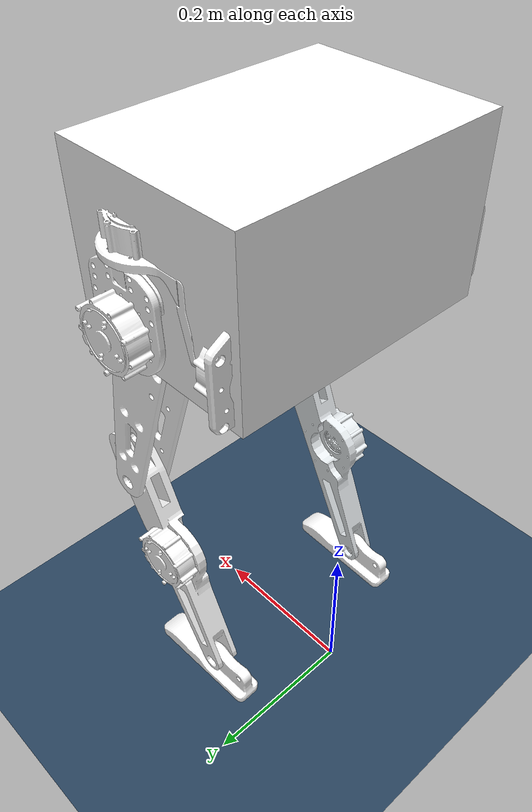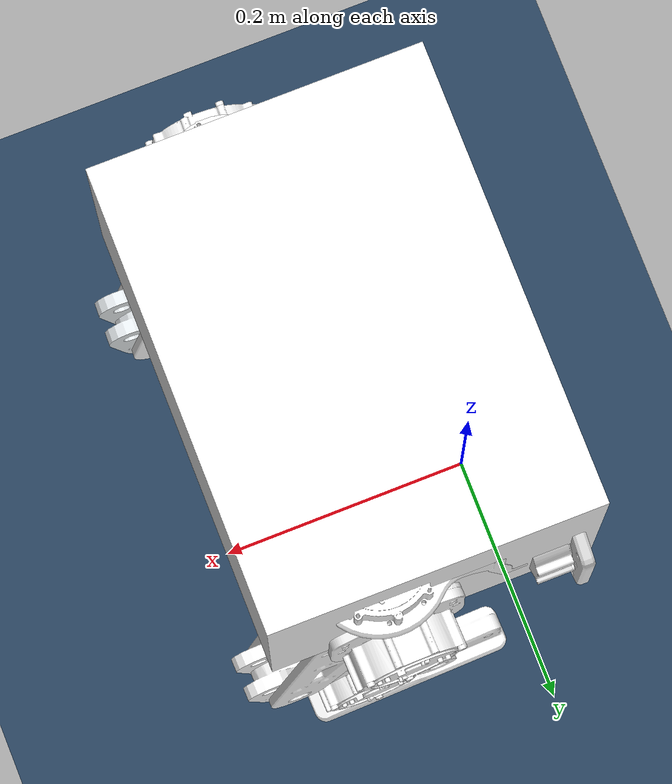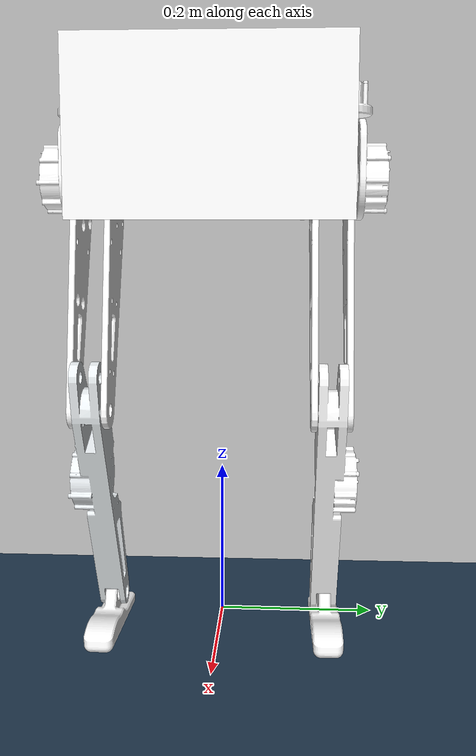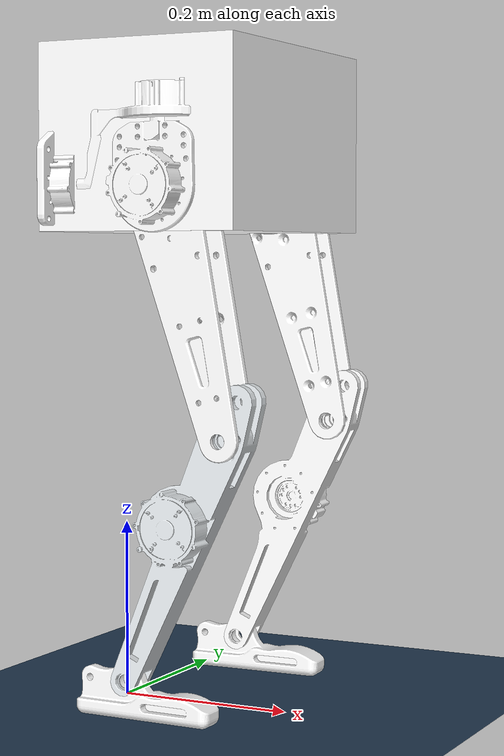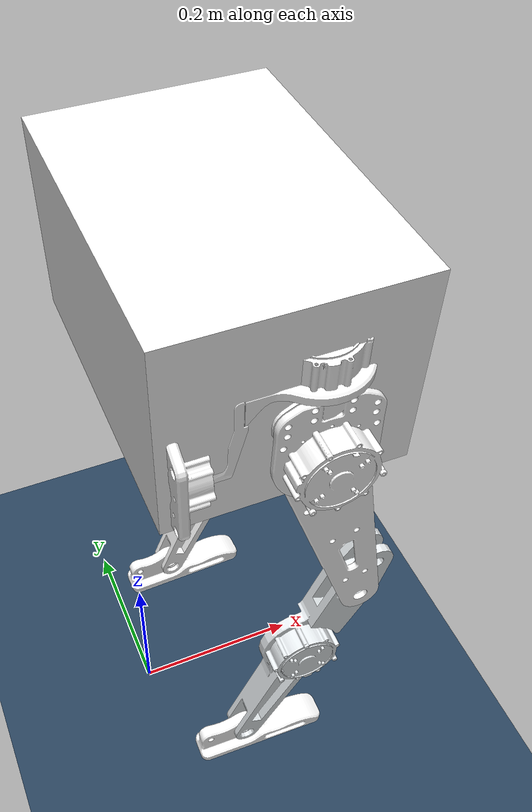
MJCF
<mujoco model="nebot scene">

  <include file="neobot.xml"/>

  <visual>
    <headlight diffuse="0.6 0.6 0.6"  ambient="0.3 0.3 0.3" specular="0 0 0"/>
    <rgba haze="0.15 0.25 0.35 1"/>
    <global azimuth="120" elevation="-20"/>
  </visual>

  <asset>
    <texture type="skybox" builtin="gradient" rgb1="0.3 0.5 0.7" rgb2="0 0 0" width="512"
        height="3072"/>
    <texture type="2d" name="groundplane" builtin="checker" mark="edge" rgb1="0.2 0.3 0.4"
        rgb2="0.1 0.2 0.3" markrgb="0.8 0.8 0.8" width="300" height="300"/>
    <material name="groundplane" texture="groundplane" texuniform="true" texrepeat="1 1"
        reflectance="0.2"/>
  </asset>

  <worldbody>
    <light pos="0 0 1.5" dir="0 0 -1" directional="true"/>
    <geom name="floor" size="0 0 0.25" type="plane" material="groundplane"/>
  </worldbody>

</mujoco>

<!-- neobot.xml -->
<mujoco model="neobot_no_mass_matrix">
    <compiler angle="radian" meshdir="../meshes/" />
    <default>
        <joint limited='true'/>
        <motor ctrllimited='true'/>
        <geom  condim='4' contype="1" conaffinity="15" solref='0.001 2' friction='0.9 0.2 0.2'/>
        <equality solref='0.001 2'/>
    </default>
    <size njmax="500" nconmax="100" />
    <asset>
        <mesh name="base_link" file="base_link.STL" />
        <mesh name="l_hip_roll_link" file="l_hip_roll_link.STL" />
        <mesh name="l_hip_yaw_link" file="l_hip_yaw_link.STL" />
        <mesh name="l_hip_pitch_link" file="l_hip_pitch_link.STL" />
        <mesh name="l_knee_pitch_link" file="l_knee_pitch_link.STL" />
        <mesh name="l_ankle_pitch_link" file="l_ankle_pitch_link.STL" />
        <mesh name="r_hip_roll_link" file="r_hip_roll_link.STL" />
        <mesh name="r_hip_yaw_link" file="r_hip_yaw_link.STL" />
        <mesh name="r_hip_pitch_link" file="r_hip_pitch_link.STL" />
        <mesh name="r_knee_pitch_link" file="r_knee_pitch_link.STL" />
        <mesh name="r_ankle_pitch_link" file="r_ankle_pitch_link.STL" />
    </asset>
    <worldbody>
        <body name="base_link" pos="0 0 0.63">
            <inertial pos="0.025332 -0.00013939 -0.019715" quat="0.707502 0.706704 -0.00222976 0.00222538" mass="1.0259" diaginertia="0.0040709 0.0039882 0.0013339" />
            <joint name="floating_base_joint" type="free" />
            <site name='imu' size='0.01' pos='0.0 0 0.0' quat='1 0 0 0'/>
            <geom type="mesh" contype="0" conaffinity="0" group="1" rgba="1 1 1 1" mesh="base_link" />
            <geom size="0.115 0.16 0.1" pos="0.1 0 0" type="box" rgba="1 1 1 1" />
            <body name="l_hip_roll_link" pos="0.0059839 0.1348 -0.050437">
                <inertial pos="0.10952 0.00060667 0.077433" quat="-0.0115147 0.670287 0.0142684 0.741876" mass="0.43907" diaginertia="0.000343379 0.000248039 0.000203652" />
                <joint name="l_hip_roll_joint" pos="0 0 0" axis="1 0 0" limited="true" range="-0.35 0.7" />
                <geom type="mesh" contype="0" conaffinity="0" group="1" rgba="1 1 1 1" mesh="l_hip_roll_link" />
                <body name="l_hip_yaw_link" pos="0.12444 0.0004858 0.1045">
                    <inertial pos="-0.0011389 -9.0175e-05 -0.099938" quat="0.648374 0.257786 0.264702 0.66565" mass="0.79496" diaginertia="0.000615735 0.000372636 0.000352699" />
                    <joint name="l_hip_yaw_joint" pos="0 0 0" axis="0 0 1" limited="true" range="-0.35 0.35" />
                    <geom type="mesh" contype="0" conaffinity="0" group="1" rgba="1 1 1 1" mesh="l_hip_yaw_link" />
                    <body name="l_hip_pitch_link" pos="-0.0016555 0.063239 -0.10747">
                        <inertial pos="0.028914 -0.061567 -0.10564" quat="0.69222 -0.0879632 -0.090323 0.710589" mass="0.26986" diaginertia="0.00222876 0.00211513 0.000115979" />
                        <joint name="l_hip_pitch_joint" pos="0 0 0" axis="0.0261699 -0.999658 0" limited="true" range="-0.7 0.7" />
                        <geom type="mesh" contype="0" conaffinity="0" group="1" rgba="1 1 1 1" mesh="l_hip_pitch_link" />
                        <body name="l_knee_pitch_link" pos="0.069483 -0.067847 -0.26198">
                            <inertial pos="-0.05093 0.014286 -0.094778" quat="0.684719 0.145904 0.150684 0.697973" mass="0.61414" diaginertia="0.00302955 0.00288766 0.000221637" />
                            <joint name="l_knee_pitch_joint" pos="0 0 0" axis="0.0261699 -0.999658 0" limited="true" range="-0.7 0.7" />
                            <geom type="mesh" contype="0" conaffinity="0" group="1" rgba="1 1 1 1" mesh="l_knee_pitch_link" />
                            <body name="l_ankle_pitch_link" pos="-0.11851 -0.00066656 -0.26317">
                                <inertial pos="0.0182969 0.00671075 -0.0230131" quat="0.478131 0.504305 0.523859 0.492584" mass="0.150425" diaginertia="0.000329399 0.000320723 3.26761e-05" />
                                <joint name="l_ankle_pitch_joint" pos="0 0 0" axis="-0.0261699 0.999658 0" limited="true" range="-0.3 0.3" />
                                <geom type="mesh" contype="0" conaffinity="0" group="1" rgba="1 1 1 1" mesh="l_ankle_pitch_link" />
                                <geom type="mesh" rgba="1 1 1 1" mesh="l_ankle_pitch_link" />
                            </body>
                        </body>
                    </body>
                </body>
            </body>
            <body name="r_hip_roll_link" pos="0.0020094 -0.13529 -0.050508">
                <inertial pos="0.11124 -0.0002406 0.077505" quat="-0.0056586 0.669678 0.00676839 0.742599" mass="0.43907" diaginertia="0.000343401 0.000245082 0.000206587" />
                <joint name="r_hip_roll_joint" pos="0 0 0" axis="1 0 0" limited="true" range="-0.7 0.35" />
                <geom type="mesh" contype="0" conaffinity="0" group="1" rgba="1 1 1 1" mesh="r_hip_roll_link" />
                <body name="r_hip_yaw_link" pos="0.12641 0 0.10457">
                    <inertial pos="-0.0014454 3.7879e-05 -0.10005" quat="0.65446 0.29108 0.283471 0.637651" mass="0.79496" diaginertia="0.000615733 0.000374569 0.000350767" />
                    <joint name="r_hip_yaw_joint" pos="0 0 0" axis="0 0 1" limited="true" range="-0.35 0.35" />
                    <geom type="mesh" contype="0" conaffinity="0" group="1" rgba="1 1 1 1" mesh="r_hip_yaw_link" />
                    <body name="r_hip_pitch_link" pos="-0.0015203 -0.063243 -0.10796">
                        <inertial pos="0.0296613 0.0615385 -0.105442" quat="0.710258 -0.092814 -0.0904427 0.69191" mass="0.269855" diaginertia="0.0022288 0.00211513 0.000115978" />
                        <joint name="r_hip_pitch_joint" pos="0 0 0" axis="-0.0261699 -0.999658 0" limited="true" range="-0.7 0.7" />
                        <geom type="mesh" contype="0" conaffinity="0" group="1" rgba="1 1 1 1" mesh="r_hip_pitch_link" />
                        <body name="r_knee_pitch_link" pos="0.070563 0.038225 -0.26149">
                            <inertial pos="-0.050275 0.015498 -0.094854" quat="0.697887 0.150559 0.145744 0.684868" mass="0.61414" diaginertia="0.00302955 0.00289049 0.00021883" />
                            <joint name="r_knee_pitch_joint" pos="0 0 0" axis="-0.0261699 -0.999658 0" limited="true" range="-0.7 0.7" />
                            <geom type="mesh" contype="0" conaffinity="0" group="1" rgba="0.89804 0.91765 0.92941 1" mesh="r_knee_pitch_link" />
                            <body name="r_ankle_pitch_link" pos="-0.11773 0.030653 -0.26317">
                                <inertial pos="0.0183208 -0.00579655 -0.0230131" quat="0.490858 0.517842 0.510482 0.479903" mass="0.150425" diaginertia="0.000329399 0.000320723 3.26761e-05" />
                                <joint name="r_ankle_pitch_joint" pos="0 0 0" axis="-0.0261699 -0.999658 0" limited="true" range="-0.3 0.3" />
                                <geom type="mesh" contype="0" conaffinity="0" group="1" rgba="1 1 1 1" mesh="r_ankle_pitch_link" />
                                <geom type="mesh" rgba="1 1 1 1" mesh="r_ankle_pitch_link" />
                            </body>
                        </body>
                    </body>
                </body>
            </body>
        </body>
    </worldbody>
    <actuator>

      <motor name="l_hip_roll"  joint="l_hip_roll_joint" gear="1" ctrllimited="true" ctrlrange="-320 320"/>
      <motor name="l_hip_yaw"  joint="l_hip_yaw_joint" gear="1" ctrllimited="true" ctrlrange="-160 160"/>
      <motor name="l_hip_pitch" joint="l_hip_pitch_joint" gear="1" ctrllimited="true" ctrlrange="-396 396"/>
      <motor name="l_knee_pitch"  joint="l_knee_pitch_joint" gear="1" ctrllimited="true" ctrlrange="-396 396"/>
      <motor name="l_ankle_pitch"  joint="l_ankle_pitch_joint" gear="1" ctrllimited="true" ctrlrange="-20 20"/>

      <motor name="r_hip_roll"  joint="r_hip_roll_joint" gear="1" ctrllimited="true" ctrlrange="-320 320"/>
      <motor name="r_hip_yaw"  joint="r_hip_yaw_joint" gear="1" ctrllimited="true" ctrlrange="-160 160"/>
      <motor name="r_hip_pitch"  joint="r_hip_pitch_joint" gear="1" ctrllimited="true" ctrlrange="-396 396"/>
      <motor name="r_knee_pitch"  joint="r_knee_pitch_joint" gear="1" ctrllimited="true" ctrlrange="-396 396"/>
      <motor name="r_ankle_pitch"  joint="r_ankle_pitch_joint" gear="1" ctrllimited="true" ctrlrange="-20 20"/>

  </actuator>

     <sensor>

      <framequat     name='orientation' objtype='site' noise='0.001' objname='imu'/>
        <framepos     name='position' objtype='site' noise='0.001' objname='imu'/>
        <gyro          name='angular-velocity'    site='imu' noise='0.005' cutoff='34.9'/>
        <velocimeter   name='linear-velocity'     site='imu' noise='0.001' cutoff='30'/>
        <accelerometer name='linear-acceleration' site='imu' noise='0.005' cutoff='157'/>
        <magnetometer  name='magnetometer'        site='imu'/>

    </sensor>
</mujoco>
